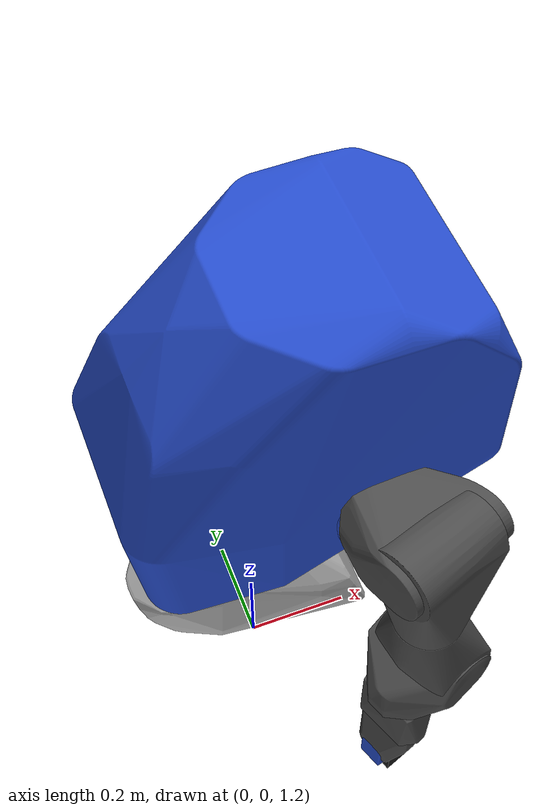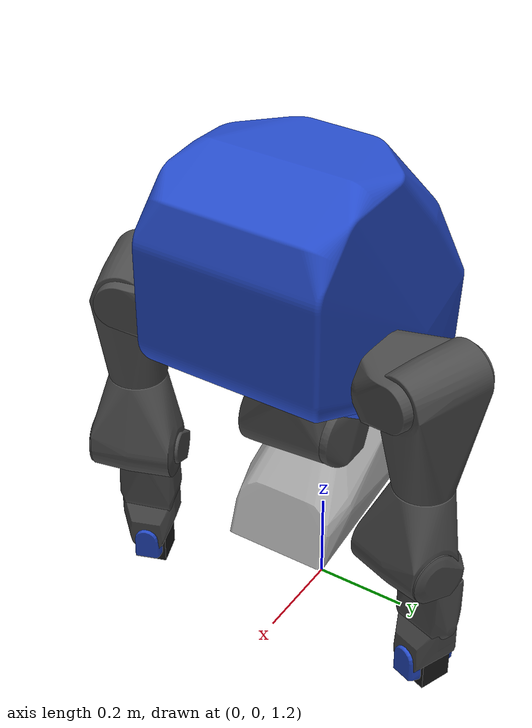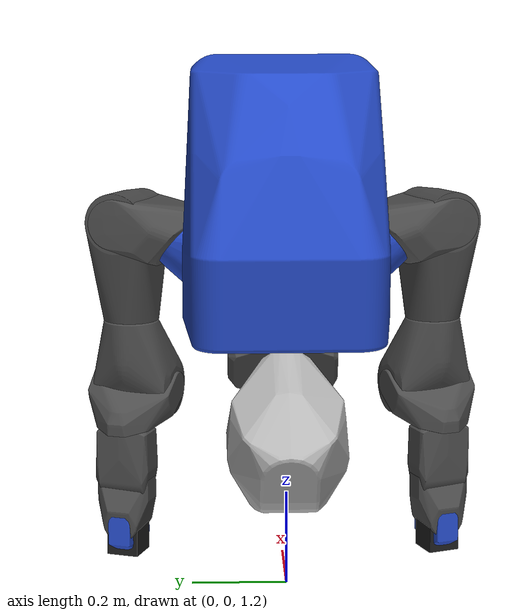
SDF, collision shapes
<sdf version='1.6'>
  <model name='bigman'>
    <link name='base_link'>
      <pose frame=''>0 0 0 0 -0 0</pose>
      <inertial>
        <pose frame=''>-0.022813 -0.000739 0.030423 0 -0 0</pose>
        <mass>11.0461</mass>
        <inertia>
          <ixx>0.096208</ixx>
          <ixy>0.00014081</ixy>
          <ixz>0.00312581</ixz>
          <iyy>0.0985112</iyy>
          <iyz>0.000139381</iyz>
          <izz>0.0865415</izz>
        </inertia>
      </inertial>
      <collision name='base_link_fixed_joint_lump__Waist_collision'>
        <pose frame=''>0 0 0 0 -0 0</pose>
        <geometry>
          <mesh>
            <scale>0.001 0.001 0.001</scale>
            <uri>model://bigman_urdf/meshes/simple/Waist.STL</uri>
          </mesh>
        </geometry>
      </collision>
      <visual name='base_link_fixed_joint_lump__Waist_visual'>
        <pose frame=''>0 0 0 0 -0 0</pose>
        <geometry>
          <mesh>
            <scale>0.001 0.001 0.001</scale>
            <uri>model://bigman_urdf/meshes/Waist.STL</uri>
          </mesh>
        </geometry>
      </visual>
      <gravity>1</gravity>
      <velocity_decay/>
    </link>
    <joint name='fixed' type='revolute'>
      <child>base_link</child>
      <parent>world</parent>
      <axis>
        <limit>
          <lower>0</lower>
          <upper>0</upper>
        </limit>
        <dynamics>
          <damping>0</damping>
          <friction>0</friction>
          <spring_reference>0</spring_reference>
          <spring_stiffness>0</spring_stiffness>
        </dynamics>
        <use_parent_model_frame>1</use_parent_model_frame>
        <xyz>0 0 1</xyz>
      </axis>
    </joint>
    <link name='DWL'>
      <pose frame=''>0.1115 0 0.195982 0 -0 0</pose>
      <inertial>
        <pose frame=''>-0.046109 0.022322 -0.022495 0 -0 0</pose>
        <mass>1.44965</mass>
        <inertia>
          <ixx>0.0109676</ixx>
          <ixy>0.00111556</ixy>
          <ixz>0.0003003</ixz>
          <iyy>0.00409572</iyy>
          <iyz>0.00054456</iyz>
          <izz>0.011438</izz>
        </inertia>
      </inertial>
      <collision name='DWL_collision'>
        <pose frame=''>0 0 0 0 -0 0</pose>
        <geometry>
          <mesh>
            <scale>0.001 0.001 0.001</scale>
            <uri>model://bigman_urdf/meshes/simple/TorsoRoll.STL</uri>
          </mesh>
        </geometry>
        <surface>
          <contact>
            <ode/>
          </contact>
          <friction>
            <ode/>
          </friction>
        </surface>
      </collision>
      <visual name='DWL_visual'>
        <pose frame=''>0 0 0 0 -0 0</pose>
        <geometry>
          <mesh>
            <scale>0.001 0.001 0.001</scale>
            <uri>model://bigman_urdf/meshes/TorsoRoll.STL</uri>
          </mesh>
        </geometry>
        <material>
          <script>
            <name>Gazebo/DarkGrey</name>
            <uri>file://media/materials/scripts/gazebo.material</uri>
          </script>
        </material>
      </visual>
      <gravity>1</gravity>
      <velocity_decay/>
    </link>
    <joint name='WaistLat' type='revolute'>
      <child>DWL</child>
      <parent>base_link</parent>
      <axis>
        <xyz>0.8988 0 0.438359</xyz>
        <limit>
          <lower>-0.610865</lower>
          <upper>0.610865</upper>
          <effort>120</effort>
          <velocity>6.283</velocity>
        </limit>
        <dynamics>
          <damping>3</damping>
          <friction>0</friction>
          <spring_reference>0</spring_reference>
          <spring_stiffness>0</spring_stiffness>
        </dynamics>
        <use_parent_model_frame>1</use_parent_model_frame>
      </axis>
      <physics>
        <provide_feedback>1</provide_feedback>
        <ode>
          <provide_feedback>1</provide_feedback>
          <implicit_spring_damper>1</implicit_spring_damper>
          <cfm_damping>1</cfm_damping>
          <limit>
            <cfm>0</cfm>
            <erp>0.2</erp>
          </limit>
        </ode>
      </physics>
    </joint>
    <link name='DWS'>
      <pose frame=''>0.1115 0 0.195982 0 -0 0</pose>
      <inertial>
        <pose frame=''>0.000102 0.009282 0.081136 0 -0 0</pose>
        <mass>5.28826</mass>
        <inertia>
          <ixx>0.0162807</ixx>
          <ixy>-3.23e-06</ixy>
          <ixz>1.424e-05</ixz>
          <iyy>0.0142429</iyy>
          <iyz>0.00075458</iyz>
          <izz>0.00994169</izz>
        </inertia>
      </inertial>
      <collision name='DWS_collision'>
        <pose frame=''>0 0 0 0 -0 0</pose>
        <geometry>
          <mesh>
            <scale>0.001 0.001 0.001</scale>
            <uri>model://bigman_urdf/meshes/simple/TorsoYawPitch.STL</uri>
          </mesh>
        </geometry>
        <surface>
          <contact>
            <ode/>
          </contact>
          <friction>
            <ode/>
          </friction>
        </surface>
      </collision>
      <visual name='DWS_visual'>
        <pose frame=''>0 0 0 0 -0 0</pose>
        <geometry>
          <mesh>
            <scale>0.001 0.001 0.001</scale>
            <uri>model://bigman_urdf/meshes/TorsoYawPitch.STL</uri>
          </mesh>
        </geometry>
        <material>
          <script>
            <name>Gazebo/DarkGrey</name>
            <uri>file://media/materials/scripts/gazebo.material</uri>
          </script>
        </material>
      </visual>
      <gravity>1</gravity>
      <velocity_decay/>
    </link>
    <joint name='WaistSag' type='revolute'>
      <child>DWS</child>
      <parent>DWL</parent>
      <axis>
        <xyz>0 1 0</xyz>
        <limit>
          <lower>-0.349066</lower>
          <upper>1.39626</upper>
          <effort>220</effort>
          <velocity>6.283</velocity>
        </limit>
        <dynamics>
          <damping>3</damping>
          <friction>0</friction>
          <spring_reference>0</spring_reference>
          <spring_stiffness>0</spring_stiffness>
        </dynamics>
        <use_parent_model_frame>1</use_parent_model_frame>
      </axis>
      <physics>
        <provide_feedback>1</provide_feedback>
        <ode>
          <provide_feedback>1</provide_feedback>
          <implicit_spring_damper>1</implicit_spring_damper>
          <cfm_damping>1</cfm_damping>
          <limit>
            <cfm>0</cfm>
            <erp>0.2</erp>
          </limit>
        </ode>
      </physics>
    </joint>
    <link name='DWYTorso'>
      <pose frame=''>0.1115 0 0.418732 0 -0 0</pose>
      <inertial>
        <pose frame=''>-0.055035 0 0.178241 0 -0 0</pose>
        <mass>40.7</mass>
        <inertia>
          <ixx>1.57781</ixx>
          <ixy>8.16929e-05</ixy>
          <ixz>-0.565821</ixz>
          <iyy>1.62242</iyy>
          <iyz>-1.75581e-05</iyz>
          <izz>0.690258</izz>
        </inertia>
      </inertial>
      <collision name='DWYTorso_collision'>
        <pose frame=''>0 0 0 0 -0 0</pose>
        <geometry>
          <mesh>
            <scale>0.001 0.001 0.001</scale>
            <uri>model://bigman_urdf/meshes/simple/NewChest.STL</uri>
          </mesh>
        </geometry>
        <surface>
          <contact>
            <ode/>
          </contact>
          <friction>
            <ode/>
          </friction>
        </surface>
      </collision>
      <collision name='DWYTorso_fixed_joint_lump__backpack_collision_1'>
        <pose frame=''>-0.185 0 -0.025 0 -0 0</pose>
        <geometry>
          <box>
            <size>0.16 0.3 0.22</size>
          </box>
        </geometry>
      </collision>
      <collision name='DWYTorso_fixed_joint_lump__TorsoProtections_collision_2'>
        <pose frame=''>0 0 0 0 -0 0</pose>
        <geometry>
          <mesh>
            <scale>0.001 0.001 0.001</scale>
            <uri>model://bigman_urdf/meshes/simple/ProtectionSystem.STL</uri>
          </mesh>
        </geometry>
      </collision>
      <visual name='DWYTorso_visual'>
        <pose frame=''>0 0 0 0 -0 0</pose>
        <geometry>
          <mesh>
            <scale>0.001 0.001 0.001</scale>
            <uri>model://bigman_urdf/meshes/NewChest.STL</uri>
          </mesh>
        </geometry>
        <material>
          <script>
            <name>Gazebo/Blue</name>
            <uri>file://media/materials/scripts/gazebo.material</uri>
          </script>
        </material>
      </visual>
      <visual name='DWYTorso_fixed_joint_lump__backpack_visual_1'>
        <pose frame=''>-0.185 0 -0.025 0 -0 0</pose>
        <geometry>
          <box>
            <size>0.16 0.3 0.22</size>
          </box>
        </geometry>
      </visual>
      <visual name='DWYTorso_fixed_joint_lump__TorsoProtections_visual_2'>
        <pose frame=''>0 0 0 0 -0 0</pose>
        <geometry>
          <mesh>
            <scale>0.001 0.001 0.001</scale>
            <uri>model://bigman_urdf/meshes/ProtectionSystem.STL</uri>
          </mesh>
        </geometry>
      </visual>
      <gravity>1</gravity>
      <velocity_decay/>
    </link>
    <joint name='WaistYaw' type='revolute'>
      <child>DWYTorso</child>
      <parent>DWS</parent>
      <axis>
        <xyz>0 0 1</xyz>
        <limit>
          <lower>-2.84489</lower>
          <upper>2.84489</upper>
          <effort>120</effort>
          <velocity>6.283</velocity>
        </limit>
        <dynamics>
          <damping>3</damping>
          <friction>0</friction>
          <spring_reference>0</spring_reference>
          <spring_stiffness>0</spring_stiffness>
        </dynamics>
        <use_parent_model_frame>1</use_parent_model_frame>
      </axis>
      <physics>
        <provide_feedback>1</provide_feedback>
        <ode>
          <provide_feedback>1</provide_feedback>
          <implicit_spring_damper>1</implicit_spring_damper>
          <cfm_damping>1</cfm_damping>
          <limit>
            <cfm>0</cfm>
            <erp>0.2</erp>
          </limit>
        </ode>
      </physics>
    </joint>
    <link name='LShp'>
      <pose frame=''>0.157146 0.219164 0.420263 0 0 -0.3491</pose>
      <inertial>
        <pose frame=''>-0.005433 0.0448 0.015811 0 -0 0</pose>
        <mass>1.81746</mass>
        <inertia>
          <ixx>0.00571053</ixx>
          <ixy>-0.00041083</ixy>
          <ixz>-5.13e-05</ixz>
          <iyy>0.0112691</iyy>
          <iyz>3.461e-05</iyz>
          <izz>0.013712</izz>
        </inertia>
      </inertial>
      <collision name='LShp_collision'>
        <pose frame=''>0 0 0 0 -0 0</pose>
        <geometry>
          <mesh>
            <scale>0.001 -0.001 0.001</scale>
            <uri>model://bigman_urdf/meshes/simple/ShoulderPitch.STL</uri>
          </mesh>
        </geometry>
        <surface>
          <contact>
            <ode/>
          </contact>
          <friction>
            <ode/>
          </friction>
        </surface>
      </collision>
      <visual name='LShp_visual'>
        <pose frame=''>0 0 0 0 -0 0</pose>
        <geometry>
          <mesh>
            <scale>0.001 -0.001 0.001</scale>
            <uri>model://bigman_urdf/meshes/ShoulderPitch.STL</uri>
          </mesh>
        </geometry>
        <material>
          <script>
            <name>Gazebo/DarkGrey</name>
            <uri>file://media/materials/scripts/gazebo.material</uri>
          </script>
        </material>
      </visual>
      <gravity>1</gravity>
      <velocity_decay/>
    </link>
    <joint name='LShSag' type='revolute'>
      <child>LShp</child>
      <parent>DWYTorso</parent>
      <axis>
        <xyz>0.254194 0.698319 0.669131</xyz>
        <limit>
          <lower>-2.87979</lower>
          <upper>2.79253</upper>
          <effort>120</effort>
          <velocity>6.283</velocity>
        </limit>
        <dynamics>
          <damping>3</damping>
          <friction>0</friction>
          <spring_reference>0</spring_reference>
          <spring_stiffness>0</spring_stiffness>
        </dynamics>
        <use_parent_model_frame>1</use_parent_model_frame>
      </axis>
      <physics>
        <provide_feedback>1</provide_feedback>
        <ode>
          <provide_feedback>1</provide_feedback>
          <implicit_spring_damper>1</implicit_spring_damper>
          <cfm_damping>1</cfm_damping>
          <limit>
            <cfm>0</cfm>
            <erp>0.2</erp>
          </limit>
        </ode>
      </physics>
    </joint>
    <link name='LShr'>
      <pose frame=''>0.197018 0.328701 0.453903 0 0 -0.3491</pose>
      <inertial>
        <pose frame=''>0.007293 -2.7e-05 -0.075297 0 -0 0</pose>
        <mass>5.00486</mass>
        <inertia>
          <ixx>0.0164434</ixx>
          <ixy>1.187e-05</ixy>
          <ixz>-0.00010546</ixz>
          <iyy>0.018048</iyy>
          <iyz>5.65e-06</iyz>
          <izz>0.0080242</izz>
        </inertia>
      </inertial>
      <collision name='LShr_collision'>
        <pose frame=''>0 0 0 0 -0 0</pose>
        <geometry>
          <mesh>
            <scale>0.001 -0.001 0.001</scale>
            <uri>model://bigman_urdf/meshes/simple/TopUpperArm.STL</uri>
          </mesh>
        </geometry>
        <surface>
          <contact>
            <ode/>
          </contact>
          <friction>
            <ode/>
          </friction>
        </surface>
      </collision>
      <visual name='LShr_visual'>
        <pose frame=''>0 0 0 0 -0 0</pose>
        <geometry>
          <mesh>
            <scale>0.001 -0.001 0.001</scale>
            <uri>model://bigman_urdf/meshes/TopUpperArm.STL</uri>
          </mesh>
        </geometry>
        <material>
          <script>
            <name>Gazebo/DarkGrey</name>
            <uri>file://media/materials/scripts/gazebo.material</uri>
          </script>
        </material>
      </visual>
      <gravity>1</gravity>
      <velocity_decay/>
    </link>
    <joint name='LShLat' type='revolute'>
      <child>LShr</child>
      <parent>LShp</parent>
      <axis>
        <xyz>0.939681 -0.342052 0</xyz>
        <limit>
          <lower>0.0872665</lower>
          <upper>3.85718</upper>
          <effort>120</effort>
          <velocity>6.283</velocity>
        </limit>
        <dynamics>
          <damping>3</damping>
          <friction>0</friction>
          <spring_reference>0</spring_reference>
          <spring_stiffness>0</spring_stiffness>
        </dynamics>
        <use_parent_model_frame>1</use_parent_model_frame>
      </axis>
      <physics>
        <provide_feedback>1</provide_feedback>
        <ode>
          <provide_feedback>1</provide_feedback>
          <implicit_spring_damper>1</implicit_spring_damper>
          <cfm_damping>1</cfm_damping>
          <limit>
            <cfm>0</cfm>
            <erp>0.2</erp>
          </limit>
        </ode>
      </physics>
    </joint>
    <link name='LShy'>
      <pose frame=''>0.197018 0.328701 0.231903 0 0 -0.3491</pose>
      <inertial>
        <pose frame=''>0.027654 0.032586 -0.126988 0 -0 0</pose>
        <mass>3.20289</mass>
        <inertia>
          <ixx>0.0112905</ixx>
          <ixy>-0.00013518</ixy>
          <ixz>-0.0013476</ixz>
          <iyy>0.00984951</iyy>
          <iyz>0.00026836</iyz>
          <izz>0.00728549</izz>
        </inertia>
      </inertial>
      <collision name='LShy_collision'>
        <pose frame=''>0 0 0 0 -0 0</pose>
        <geometry>
          <mesh>
            <scale>0.001 -0.001 0.001</scale>
            <uri>model://bigman_urdf/meshes/simple/BottomUpperArm.STL</uri>
          </mesh>
        </geometry>
        <surface>
          <contact>
            <ode/>
          </contact>
          <friction>
            <ode/>
          </friction>
        </surface>
      </collision>
      <visual name='LShy_visual'>
        <pose frame=''>0 0 0 0 -0 0</pose>
        <geometry>
          <mesh>
            <scale>0.001 -0.001 0.001</scale>
            <uri>model://bigman_urdf/meshes/BottomUpperArm.STL</uri>
          </mesh>
        </geometry>
        <material>
          <script>
            <name>Gazebo/DarkGrey</name>
            <uri>file://media/materials/scripts/gazebo.material</uri>
          </script>
        </material>
      </visual>
      <gravity>1</gravity>
      <velocity_decay/>
    </link>
    <joint name='LShYaw' type='revolute'>
      <child>LShy</child>
      <parent>LShr</parent>
      <axis>
        <xyz>0 0 1</xyz>
        <limit>
          <lower>-2.84489</lower>
          <upper>2.84489</upper>
          <effort>120</effort>
          <velocity>6.283</velocity>
        </limit>
        <dynamics>
          <damping>3</damping>
          <friction>0</friction>
          <spring_reference>0</spring_reference>
          <spring_stiffness>0</spring_stiffness>
        </dynamics>
        <use_parent_model_frame>1</use_parent_model_frame>
      </axis>
      <physics>
        <provide_feedback>1</provide_feedback>
        <ode>
          <provide_feedback>1</provide_feedback>
          <implicit_spring_damper>1</implicit_spring_damper>
          <cfm_damping>1</cfm_damping>
          <limit>
            <cfm>0</cfm>
            <erp>0.2</erp>
          </limit>
        </ode>
      </physics>
    </joint>
    <link name='LElb'>
      <pose frame=''>0.230847 0.316387 0.081903 0 0 -0.3491</pose>
      <inertial>
        <pose frame=''>-0.055755 0.007583 -0.04382 0 -0 0</pose>
        <mass>0.867654</mass>
        <inertia>
          <ixx>0.00403952</ixx>
          <ixy>-0.000349731</ixy>
          <ixz>-0.000684005</ixz>
          <iyy>0.00224606</iyy>
          <iyz>-0.000288444</iyz>
          <izz>0.0044895</izz>
        </inertia>
      </inertial>
      <collision name='LElb_collision'>
        <pose frame=''>0 0 0 0 -0 0</pose>
        <geometry>
          <mesh>
            <scale>0.001 -0.001 0.001</scale>
            <uri>model://bigman_urdf/meshes/simple/Elbow.STL</uri>
          </mesh>
        </geometry>
        <surface>
          <contact>
            <ode/>
          </contact>
          <friction>
            <ode/>
          </friction>
        </surface>
      </collision>
      <visual name='LElb_visual'>
        <pose frame=''>0 0 0 0 -0 0</pose>
        <geometry>
          <mesh>
            <scale>0.001 -0.001 0.001</scale>
            <uri>model://bigman_urdf/meshes/Elbow.STL</uri>
          </mesh>
        </geometry>
        <material>
          <script>
            <name>Gazebo/DarkGrey</name>
            <uri>file://media/materials/scripts/gazebo.material</uri>
          </script>
        </material>
      </visual>
      <gravity>1</gravity>
      <velocity_decay/>
    </link>
    <joint name='LElbj' type='revolute'>
      <child>LElb</child>
      <parent>LShy</parent>
      <axis>
        <xyz>0.342052 0.939681 0</xyz>
        <limit>
          <lower>-2.96706</lower>
          <upper>0.593412</upper>
          <effort>120</effort>
          <velocity>6.283</velocity>
        </limit>
        <dynamics>
          <damping>3</damping>
          <friction>0</friction>
          <spring_reference>0</spring_reference>
          <spring_stiffness>0</spring_stiffness>
        </dynamics>
        <use_parent_model_frame>1</use_parent_model_frame>
      </axis>
      <physics>
        <provide_feedback>1</provide_feedback>
        <ode>
          <provide_feedback>1</provide_feedback>
          <implicit_spring_damper>1</implicit_spring_damper>
          <cfm_damping>1</cfm_damping>
          <limit>
            <cfm>0</cfm>
            <erp>0.2</erp>
          </limit>
        </ode>
      </physics>
    </joint>
    <link name='LForearm'>
      <pose frame=''>0.160371 0.342041 -0.113597 0 0 -0.3491</pose>
      <inertial>
        <pose frame=''>1.3e-05 0.004298 0.044718 0 -0 0</pose>
        <mass>2.21277</mass>
        <inertia>
          <ixx>0.00654284</ixx>
          <ixy>-4.1197e-05</ixy>
          <ixz>3.27273e-06</ixz>
          <iyy>0.00558783</iyy>
          <iyz>0.000420887</iyz>
          <izz>0.0024783</izz>
        </inertia>
      </inertial>
      <collision name='LForearm_collision'>
        <pose frame=''>0 0 0 0 -0 0</pose>
        <geometry>
          <mesh>
            <scale>0.001 -0.001 0.001</scale>
            <uri>model://bigman_urdf/meshes/simple/Forearm.STL</uri>
          </mesh>
        </geometry>
        <surface>
          <contact>
            <ode/>
          </contact>
          <friction>
            <ode/>
          </friction>
        </surface>
      </collision>
      <visual name='LForearm_visual'>
        <pose frame=''>0 0 0 0 -0 0</pose>
        <geometry>
          <mesh>
            <scale>0.001 -0.001 0.001</scale>
            <uri>model://bigman_urdf/meshes/Forearm.STL</uri>
          </mesh>
        </geometry>
        <material>
          <script>
            <name>Gazebo/DarkGrey</name>
            <uri>file://media/materials/scripts/gazebo.material</uri>
          </script>
        </material>
      </visual>
      <gravity>1</gravity>
      <velocity_decay/>
    </link>
    <joint name='LForearmPlate' type='revolute'>
      <child>LForearm</child>
      <parent>LElb</parent>
      <axis>
        <xyz>0 0 1</xyz>
        <limit>
          <lower>-2.529</lower>
          <upper>2.529</upper>
          <effort>60</effort>
          <velocity>6.283</velocity>
        </limit>
        <dynamics>
          <damping>0.03</damping>
          <friction>0</friction>
          <spring_reference>0</spring_reference>
          <spring_stiffness>0</spring_stiffness>
        </dynamics>
        <use_parent_model_frame>1</use_parent_model_frame>
      </axis>
      <physics>
        <provide_feedback>1</provide_feedback>
        <ode>
          <provide_feedback>1</provide_feedback>
          <implicit_spring_damper>1</implicit_spring_damper>
          <cfm_damping>1</cfm_damping>
          <limit>
            <cfm>0</cfm>
            <erp>0.2</erp>
          </limit>
        </ode>
      </physics>
    </joint>
    <link name='LWrMot2'>
      <pose frame=''>0.160371 0.342041 -0.113597 0 0 -0.3491</pose>
      <inertial>
        <pose frame=''>0.009819 0.00138 -0.08038 0 -0 0</pose>
        <mass>1.28381</mass>
        <inertia>
          <ixx>0.00199412</ixx>
          <ixy>2.56971e-05</ixy>
          <ixz>0.000174435</ixz>
          <iyy>0.00217553</iyy>
          <iyz>-0.00012101</iyz>
          <izz>0.00183038</izz>
        </inertia>
      </inertial>
      <collision name='LWrMot2_collision'>
        <pose frame=''>0 0 0 0 -0 0</pose>
        <geometry>
          <mesh>
            <scale>0.001 -0.001 0.001</scale>
            <uri>model://bigman_urdf/meshes/simple/ForearmPitch.STL</uri>
          </mesh>
        </geometry>
        <surface>
          <contact>
            <ode/>
          </contact>
          <friction>
            <ode/>
          </friction>
        </surface>
      </collision>
      <visual name='LWrMot2_visual'>
        <pose frame=''>0 0 0 0 -0 0</pose>
        <geometry>
          <mesh>
            <scale>0.001 -0.001 0.001</scale>
            <uri>model://bigman_urdf/meshes/ForearmPitch.STL</uri>
          </mesh>
        </geometry>
        <material>
          <script>
            <name>Gazebo/DarkGrey</name>
            <uri>file://media/materials/scripts/gazebo.material</uri>
          </script>
        </material>
      </visual>
      <gravity>1</gravity>
      <velocity_decay/>
    </link>
    <joint name='LWrj1' type='revolute'>
      <child>LWrMot2</child>
      <parent>LForearm</parent>
      <axis>
        <xyz>0.342052 0.939681 0</xyz>
        <limit>
          <lower>-1.48</lower>
          <upper>1.48</upper>
          <effort>60</effort>
          <velocity>6.283</velocity>
        </limit>
        <dynamics>
          <damping>0.03</damping>
          <friction>0</friction>
          <spring_reference>0</spring_reference>
          <spring_stiffness>0</spring_stiffness>
        </dynamics>
        <use_parent_model_frame>1</use_parent_model_frame>
      </axis>
      <physics>
        <provide_feedback>1</provide_feedback>
        <ode>
          <provide_feedback>1</provide_feedback>
          <implicit_spring_damper>1</implicit_spring_damper>
          <cfm_damping>1</cfm_damping>
          <limit>
            <cfm>0</cfm>
            <erp>0.2</erp>
          </limit>
        </ode>
      </physics>
    </joint>
    <link name='LWrMot3'>
      <pose frame=''>0.160371 0.342041 -0.205597 0 0 -0.3491</pose>
      <inertial>
        <pose frame=''>0.007038 -1.1e-05 -0.039669 0 -0 0</pose>
        <mass>0.428014</mass>
        <inertia>
          <ixx>0.000286202</ixx>
          <ixy>5.25705e-08</ixy>
          <ixz>-3.91742e-05</ixz>
          <iyy>0.000712619</iyy>
          <iyz>-9.50203e-08</iyz>
          <izz>0.000614443</izz>
        </inertia>
      </inertial>
      <collision name='LWrMot3_collision'>
        <pose frame=''>0 0 0 0 -0 0</pose>
        <geometry>
          <mesh>
            <scale>0.001 -0.001 0.001</scale>
            <uri>model://bigman_urdf/meshes/simple/ForearmRoll.STL</uri>
          </mesh>
        </geometry>
        <surface>
          <contact>
            <ode/>
          </contact>
          <friction>
            <ode/>
          </friction>
        </surface>
      </collision>
      <visual name='LWrMot3_visual'>
        <pose frame=''>0 0 0 0 -0 0</pose>
        <geometry>
          <mesh>
            <scale>0.001 -0.001 0.001</scale>
            <uri>model://bigman_urdf/meshes/ForearmRoll.STL</uri>
          </mesh>
        </geometry>
        <material>
          <script>
            <name>Gazebo/Blue</name>
            <uri>file://media/materials/scripts/gazebo.material</uri>
          </script>
        </material>
      </visual>
      <velocity_decay/>
      <sensor name='LWrMot3_contact_sensor' type='contact'>
        <contact>
          <collision>LWrMot3_fixed_joint_lump__LSoftHandLink_collision_1</collision>
          <topic>__default_topic__</topic>
        </contact>
      </sensor>
      <gravity>1</gravity>
      <velocity_decay/>
    </link>
    <joint name='LWrj2' type='revolute'>
      <child>LWrMot3</child>
      <parent>LWrMot2</parent>
      <axis>
        <xyz>0.939681 -0.342052 0</xyz>
        <limit>
          <lower>-1.48</lower>
          <upper>1.48</upper>
          <effort>60</effort>
          <velocity>6.283</velocity>
        </limit>
        <dynamics>
          <damping>0.03</damping>
          <friction>0</friction>
          <spring_reference>0</spring_reference>
          <spring_stiffness>0</spring_stiffness>
        </dynamics>
        <use_parent_model_frame>1</use_parent_model_frame>
      </axis>
      <physics>
        <ode>
          <limit>
            <cfm>0</cfm>
            <erp>0.2</erp>
          </limit>
          <provide_feedback>1</provide_feedback>
          <implicit_spring_damper>1</implicit_spring_damper>
          <cfm_damping>1</cfm_damping>
        </ode>
        <provide_feedback>1</provide_feedback>
      </physics>
      <sensor name='l_arm_ft' type='force_torque'>
        <force_torque>
          <frame>sensor</frame>
          <measure_direction>child_to_parent</measure_direction>
        </force_torque>
        <always_on>1</always_on>
        <visualize>1</visualize>
        <update_rate>1000</update_rate>
        <pose frame=''>0 0 -0.0565 0 -0 0</pose>
      </sensor>
    </joint>
    <link name='LSoftHand'>
      <pose frame=''>0.160371 0.342041 -0.245597 0 0 -0.3491</pose>
      <inertial>
        <pose frame=''>0 0 -0.17 0 -0 0</pose>
        <mass>1.2</mass>
        <inertia>
          <ixx>0.00232</ixx>
          <ixy>0</ixy>
          <ixz>0</ixz>
          <iyy>0.00296</iyy>
          <iyz>0</iyz>
          <izz>0.00136</izz>
        </inertia>
      </inertial>
      <collision name='LSoftHand_collision'>
        <pose frame=''>0 0 0 0 -0 0</pose>
        <geometry>
          <box>
            <size>0.07 0.07 0.07</size>
          </box>
        </geometry>
        <surface>
          <contact>
            <ode>
              <kp>1e+06</kp>
              <kd>100</kd>
              <max_vel>1</max_vel>
              <min_depth>0</min_depth>
            </ode>
          </contact>
          <friction>
            <ode>
              <mu>1</mu>
              <mu2>1</mu2>
              <fdir1>1 0 0</fdir1>
            </ode>
          </friction>
        </surface>
      </collision>
      <visual name='LSoftHand_visual'>
        <pose frame=''>0 0 0 0 -0 0</pose>
        <geometry>
          <box>
            <size>0.07 0.07 0.07</size>
          </box>
        </geometry>
        <material>
          <script>
            <name>Gazebo/Black</name>
            <uri>file://media/materials/scripts/gazebo.material</uri>
          </script>
        </material>
      </visual>
      <velocity_decay/>
      <gravity>1</gravity>
      <velocity_decay/>
    </link>
    <joint name='l_handj' type='revolute'>
      <child>LSoftHand</child>
      <parent>LWrMot3</parent>
      <axis>
        <xyz>-0.939681 0.342052 0</xyz>
        <limit>
          <lower>0</lower>
          <upper>5</upper>
          <effort>5</effort>
          <velocity>4</velocity>
        </limit>
        <dynamics>
          <damping>3</damping>
          <friction>0</friction>
          <spring_reference>0</spring_reference>
          <spring_stiffness>0</spring_stiffness>
        </dynamics>
        <use_parent_model_frame>1</use_parent_model_frame>
      </axis>
      <physics>
        <provide_feedback>1</provide_feedback>
        <ode>
          <provide_feedback>1</provide_feedback>
          <implicit_spring_damper>1</implicit_spring_damper>
          <cfm_damping>1</cfm_damping>
          <limit>
            <cfm>0</cfm>
            <erp>0.2</erp>
          </limit>
        </ode>
      </physics>
    </joint>
    <link name='NeckYaw'>
      <pose frame=''>0.1115 0 0.418732 0 -0 0</pose>
      <inertial>
        <pose frame=''>0 0 0.1155 0 -0 0</pose>
        <mass>0.35</mass>
        <inertia>
          <ixx>0.000328401</ixx>
          <ixy>0</ixy>
          <ixz>0</ixz>
          <iyy>7.03717e-05</iyy>
          <iyz>0</iyz>
          <izz>0.000328401</izz>
        </inertia>
      </inertial>
      <collision name='NeckYaw_collision'>
        <pose frame=''>0 0 0 0 -0 0</pose>
        <geometry>
          <mesh>
            <scale>0.001 0.001 0.001</scale>
            <uri>model://bigman_urdf/meshes/simple/NeckYaw.STL</uri>
          </mesh>
        </geometry>
        <surface>
          <contact>
            <ode/>
          </contact>
          <friction>
            <ode/>
          </friction>
        </surface>
      </collision>
      <visual name='NeckYaw_visual'>
        <pose frame=''>0 0 0 0 -0 0</pose>
        <geometry>
          <mesh>
            <scale>0.001 0.001 0.001</scale>
            <uri>model://bigman_urdf/meshes/NeckYaw.STL</uri>
          </mesh>
        </geometry>
        <material>
          <script>
            <name>Gazebo/Grey</name>
            <uri>file://media/materials/scripts/gazebo.material</uri>
          </script>
        </material>
      </visual>
      <gravity>1</gravity>
      <velocity_decay/>
    </link>
    <joint name='NeckYawj' type='revolute'>
      <child>NeckYaw</child>
      <parent>DWYTorso</parent>
      <axis>
        <xyz>0 0 1</xyz>
        <limit>
          <lower>-0.610865</lower>
          <upper>0.610865</upper>
          <effort>120</effort>
          <velocity>6.283</velocity>
        </limit>
        <dynamics>
          <damping>3</damping>
          <friction>0</friction>
          <spring_reference>0</spring_reference>
          <spring_stiffness>0</spring_stiffness>
        </dynamics>
        <use_parent_model_frame>1</use_parent_model_frame>
      </axis>
    </joint>
    <link name='NeckPitch'>
      <pose frame=''>0.1115 0 0.535732 0 -0 0</pose>
      <inertial>
        <pose frame=''>-0.022658 2.4e-05 0.145328 0 -0 0</pose>
        <mass>2.04285</mass>
        <inertia>
          <ixx>0.0180071</ixx>
          <ixy>-3.1877e-06</ixy>
          <ixz>0.00767138</ixz>
          <iyy>0.023307</iyy>
          <iyz>1.85732e-06</iyz>
          <izz>0.00971513</izz>
        </inertia>
      </inertial>
      <collision name='NeckPitch_collision'>
        <pose frame=''>0 0 0 0 -0 0</pose>
        <geometry>
          <mesh>
            <scale>0.001 0.001 0.001</scale>
            <uri>model://bigman_urdf/meshes/simple/NeckPitch.STL</uri>
          </mesh>
        </geometry>
        <surface>
          <contact>
            <ode/>
          </contact>
          <friction>
            <ode/>
          </friction>
        </surface>
      </collision>
      <collision name='NeckPitch_fixed_joint_lump__multisense/head_collision_1'>
        <pose frame=''>0.08765 0 0.06475 0 -0 0</pose>
        <geometry>
          <mesh>
            <scale>0.001 0.001 0.001</scale>
            <uri>model://bigman_urdf/meshes/simple/Head.STL</uri>
          </mesh>
        </geometry>
        <surface>
          <contact>
            <ode/>
          </contact>
          <friction>
            <ode>
              <mu>0.9</mu>
              <mu2>0.9</mu2>
            </ode>
          </friction>
        </surface>
      </collision>
      <visual name='NeckPitch_visual'>
        <pose frame=''>0 0 0 0 -0 0</pose>
        <geometry>
          <mesh>
            <scale>0.001 0.001 0.001</scale>
            <uri>model://bigman_urdf/meshes/NeckPitch.STL</uri>
          </mesh>
        </geometry>
        <material>
          <script>
            <name>Gazebo/Grey</name>
            <uri>file://media/materials/scripts/gazebo.material</uri>
          </script>
        </material>
      </visual>
      <visual name='NeckPitch_fixed_joint_lump__multisense/head_visual_1'>
        <pose frame=''>0.08765 0 0.06475 0 -0 0</pose>
        <geometry>
          <mesh>
            <scale>0.001 0.001 0.001</scale>
            <uri>model://bigman_urdf/meshes/Head.STL</uri>
          </mesh>
        </geometry>
        <material>
          <script>
            <uri>__default__</uri>
            <name>__default__</name>
          </script>
        </material>
      </visual>
      <visual name='NeckPitch_fixed_joint_lump__multisense/head_imu_link_visual_2'>
        <pose frame=''>0.04015 0.035 0.06475 0 -0 0</pose>
        <geometry>
          <box>
            <size>0.01 0.01 0.01</size>
          </box>
        </geometry>
        <material>
          <script>
            <uri>__default__</uri>
            <name>__default__</name>
          </script>
        </material>
      </visual>
      <velocity_decay/>
      <velocity_decay/>
      <velocity_decay/>
      <sensor name='head_imu_sensor' type='imu'>
        <always_on>1</always_on>
        <update_rate>1000</update_rate>
        <imu>
          <angular_velocity>
            <x>
              <noise type='gaussian'>
                <mean>0</mean>
                <stddev>0.0002</stddev>
                <bias_mean>7.5e-06</bias_mean>
                <bias_stddev>8e-07</bias_stddev>
              </noise>
            </x>
            <y>
              <noise type='gaussian'>
                <mean>0</mean>
                <stddev>0.0002</stddev>
                <bias_mean>7.5e-06</bias_mean>
                <bias_stddev>8e-07</bias_stddev>
              </noise>
            </y>
            <z>
              <noise type='gaussian'>
                <mean>0</mean>
                <stddev>0.0002</stddev>
                <bias_mean>7.5e-06</bias_mean>
                <bias_stddev>8e-07</bias_stddev>
              </noise>
            </z>
          </angular_velocity>
          <linear_acceleration>
            <x>
              <noise type='gaussian'>
                <mean>0</mean>
                <stddev>0.017</stddev>
                <bias_mean>0.1</bias_mean>
                <bias_stddev>0.001</bias_stddev>
              </noise>
            </x>
            <y>
              <noise type='gaussian'>
                <mean>0</mean>
                <stddev>0.017</stddev>
                <bias_mean>0.1</bias_mean>
                <bias_stddev>0.001</bias_stddev>
              </noise>
            </y>
            <z>
              <noise type='gaussian'>
                <mean>0</mean>
                <stddev>0.017</stddev>
                <bias_mean>0.1</bias_mean>
                <bias_stddev>0.001</bias_stddev>
              </noise>
            </z>
          </linear_acceleration>
        </imu>
        <pose frame=''>0.04015 0.035 0.06475 0 -0 0</pose>
      </sensor>
      <gravity>1</gravity>
      <velocity_decay/>
      <sensor name='stereo_camera' type='multicamera'>
        <update_rate>30</update_rate>
        <camera name='left'>
          <horizontal_fov>1.39626</horizontal_fov>
          <image>
            <width>800</width>
            <height>800</height>
            <format>R8G8B8</format>
          </image>
          <clip>
            <near>0.02</near>
            <far>300</far>
          </clip>
          <noise>
            <type>gaussian</type>
            <mean>0</mean>
            <stddev>0.007</stddev>
          </noise>
        </camera>
        <camera name='right'>
          <pose frame=''>0 -0.07 0 0 -0 0</pose>
          <horizontal_fov>1.39626</horizontal_fov>
          <image>
            <width>800</width>
            <height>800</height>
            <format>R8G8B8</format>
          </image>
          <clip>
            <near>0.02</near>
            <far>300</far>
          </clip>
          <noise>
            <type>gaussian</type>
            <mean>0</mean>
            <stddev>0.007</stddev>
          </noise>
        </camera>
        <plugin name='stereo_camera_controller' filename='libgazebo_ros_multicamera.so'>
          <alwaysOn>true</alwaysOn>
          <updateRate>0.0</updateRate>
          <cameraName>multisense/camera</cameraName>
          <imageTopicName>image_raw</imageTopicName>
          <cameraInfoTopicName>camera_info</cameraInfoTopicName>
          <frameName>multisense/left_camera_optical_frame</frameName>
          <rightFrameName>multisense/right_camera_optical_frame</rightFrameName>
          <hackBaseline>0.07</hackBaseline>
          <distortionK1>0.0</distortionK1>
          <distortionK2>0.0</distortionK2>
          <distortionK3>0.0</distortionK3>
          <distortionT1>0.0</distortionT1>
          <distortionT2>0.0</distortionT2>
        </plugin>
        <pose frame=''>0.08765 0.035 0.06275 0 -0 0</pose>
      </sensor>
    </link>
    <joint name='NeckPitchj' type='revolute'>
      <child>NeckPitch</child>
      <parent>NeckYaw</parent>
      <axis>
        <xyz>0 1 0</xyz>
        <limit>
          <lower>-0.261799</lower>
          <upper>1.0472</upper>
          <effort>120</effort>
          <velocity>6.283</velocity>
        </limit>
        <dynamics>
          <damping>3</damping>
          <friction>0</friction>
          <spring_reference>0</spring_reference>
          <spring_stiffness>0</spring_stiffness>
        </dynamics>
        <use_parent_model_frame>1</use_parent_model_frame>
      </axis>
    </joint>
    <link name='multisense/hokuyo_link'>
      <pose frame=''>0.15455 0 0.688482 0 -0 0</pose>
      <inertial>
        <pose frame=''>0.032428 0.000408 -0.004184 0 -0 0</pose>
        <mass>0.057654</mass>
        <inertia>
          <ixx>3.7174e-05</ixx>
          <ixy>4.9927e-08</ixy>
          <ixz>1.1015e-05</ixz>
          <iyy>4.2412e-05</iyy>
          <iyz>-9.8165e-09</iyz>
          <izz>4.167e-05</izz>
        </inertia>
      </inertial>
      <collision name='multisense/hokuyo_link_collision'>
        <pose frame=''>0.01885 0 -0.02119 0 -0 0</pose>
        <geometry>
          <box>
            <size>0.08 0.06 0.04238</size>
          </box>
        </geometry>
        <surface>
          <contact>
            <ode/>
          </contact>
          <friction>
            <ode>
              <mu>0.9</mu>
              <mu2>0.9</mu2>
            </ode>
          </friction>
        </surface>
      </collision>
      <collision name='multisense/hokuyo_link_collision_1'>
        <pose frame=''>0.03 0 0.0235 0 -0 0</pose>
        <geometry>
          <cylinder>
            <length>0.047</length>
            <radius>0.024425</radius>
          </cylinder>
        </geometry>
        <surface>
          <contact>
            <ode/>
          </contact>
          <friction>
            <ode>
              <mu>0.9</mu>
              <mu2>0.9</mu2>
            </ode>
          </friction>
        </surface>
      </collision>
      <visual name='multisense/hokuyo_link_visual'>
        <pose frame=''>0 0 0 1.5708 -0 1.5708</pose>
        <geometry>
          <mesh>
            <scale>1 1 1</scale>
            <uri>model://bigman_urdf/meshes/hokuyo_link.STL</uri>
          </mesh>
        </geometry>
        <material>
          <script>
            <uri>__default__</uri>
            <name>__default__</name>
          </script>
        </material>
      </visual>
      <velocity_decay/>
      <gravity>1</gravity>
      <velocity_decay/>
      <sensor name='head_hokuyo_sensor' type='ray'>
        <visualize>1</visualize>
        <update_rate>40</update_rate>
        <ray>
          <scan>
            <horizontal>
              <samples>720</samples>
              <resolution>1</resolution>
              <min_angle>-1.5708</min_angle>
              <max_angle>1.5708</max_angle>
            </horizontal>
          </scan>
          <range>
            <min>0.1</min>
            <max>30</max>
            <resolution>0.01</resolution>
          </range>
          <noise>
            <type>gaussian</type>
            <mean>0</mean>
            <stddev>0.01</stddev>
          </noise>
        </ray>
        <plugin name='gazebo_ros_head_hokuyo_controller' filename='libgazebo_ros_laser.so'>
          <topicName>/multisense/lidar_scan</topicName>
          <frameName>multisense/head_hokuyo_frame</frameName>
        </plugin>
        <pose frame=''>0.03 0 0.015 0 -0 0</pose>
      </sensor>
    </link>
    <joint name='hokuyo_joint' type='revolute'>
      <child>multisense/hokuyo_link</child>
      <parent>NeckPitch</parent>
      <axis>
        <xyz>1 0 0</xyz>
        <limit>
          <lower>-1e+16</lower>
          <upper>1e+16</upper>
        </limit>
        <dynamics>
          <damping>0.01</damping>
          <friction>0</friction>
          <spring_reference>0</spring_reference>
          <spring_stiffness>0</spring_stiffness>
        </dynamics>
        <use_parent_model_frame>1</use_parent_model_frame>
      </axis>
      <physics>
        <ode>
          <implicit_spring_damper>1</implicit_spring_damper>
          <cfm_damping>1</cfm_damping>
          <limit>
            <cfm>0</cfm>
            <erp>0.2</erp>
          </limit>
        </ode>
      </physics>
    </joint>
    <link name='RShp'>
      <pose frame=''>0.157146 -0.219164 0.420263 0 -0 0.3491</pose>
      <inertial>
        <pose frame=''>-0.005433 -0.0448 0.015811 0 -0 0</pose>
        <mass>1.81746</mass>
        <inertia>
          <ixx>0.00571053</ixx>
          <ixy>0.00041083</ixy>
          <ixz>-5.13e-05</ixz>
          <iyy>0.0112691</iyy>
          <iyz>-3.461e-05</iyz>
          <izz>0.013712</izz>
        </inertia>
      </inertial>
      <collision name='RShp_collision'>
        <pose frame=''>0 0 0 0 -0 0</pose>
        <geometry>
          <mesh>
            <scale>0.001 0.001 0.001</scale>
            <uri>model://bigman_urdf/meshes/simple/ShoulderPitch.STL</uri>
          </mesh>
        </geometry>
        <surface>
          <contact>
            <ode/>
          </contact>
          <friction>
            <ode/>
          </friction>
        </surface>
      </collision>
      <visual name='RShp_visual'>
        <pose frame=''>0 0 0 0 -0 0</pose>
        <geometry>
          <mesh>
            <scale>0.001 0.001 0.001</scale>
            <uri>model://bigman_urdf/meshes/ShoulderPitch.STL</uri>
          </mesh>
        </geometry>
        <material>
          <script>
            <name>Gazebo/DarkGrey</name>
            <uri>file://media/materials/scripts/gazebo.material</uri>
          </script>
        </material>
      </visual>
      <gravity>1</gravity>
      <velocity_decay/>
    </link>
    <joint name='RShSag' type='revolute'>
      <child>RShp</child>
      <parent>DWYTorso</parent>
      <axis>
        <xyz>-0.254194 0.698319 -0.669131</xyz>
        <limit>
          <lower>-2.84489</lower>
          <upper>2.80998</upper>
          <effort>120</effort>
          <velocity>6.283</velocity>
        </limit>
        <dynamics>
          <damping>3</damping>
          <friction>0</friction>
          <spring_reference>0</spring_reference>
          <spring_stiffness>0</spring_stiffness>
        </dynamics>
        <use_parent_model_frame>1</use_parent_model_frame>
      </axis>
      <physics>
        <provide_feedback>1</provide_feedback>
        <ode>
          <provide_feedback>1</provide_feedback>
          <implicit_spring_damper>1</implicit_spring_damper>
          <cfm_damping>1</cfm_damping>
          <limit>
            <cfm>0</cfm>
            <erp>0.2</erp>
          </limit>
        </ode>
      </physics>
    </joint>
    <link name='RShr'>
      <pose frame=''>0.197018 -0.328701 0.453903 0 -0 0.3491</pose>
      <inertial>
        <pose frame=''>0.007293 2.7e-05 -0.075297 0 -0 0</pose>
        <mass>5.00486</mass>
        <inertia>
          <ixx>0.0164434</ixx>
          <ixy>-1.187e-05</ixy>
          <ixz>-0.00010546</ixz>
          <iyy>0.018048</iyy>
          <iyz>-5.65e-06</iyz>
          <izz>0.0080242</izz>
        </inertia>
      </inertial>
      <collision name='RShr_collision'>
        <pose frame=''>0 0 0 0 -0 0</pose>
        <geometry>
          <mesh>
            <scale>0.001 0.001 0.001</scale>
            <uri>model://bigman_urdf/meshes/simple/TopUpperArm.STL</uri>
          </mesh>
        </geometry>
        <surface>
          <contact>
            <ode/>
          </contact>
          <friction>
            <ode/>
          </friction>
        </surface>
      </collision>
      <visual name='RShr_visual'>
        <pose frame=''>0 0 0 0 -0 0</pose>
        <geometry>
          <mesh>
            <scale>0.001 0.001 0.001</scale>
            <uri>model://bigman_urdf/meshes/TopUpperArm.STL</uri>
          </mesh>
        </geometry>
        <material>
          <script>
            <name>Gazebo/DarkGrey</name>
            <uri>file://media/materials/scripts/gazebo.material</uri>
          </script>
        </material>
      </visual>
      <gravity>1</gravity>
      <velocity_decay/>
    </link>
    <joint name='RShLat' type='revolute'>
      <child>RShr</child>
      <parent>RShp</parent>
      <axis>
        <xyz>0.939681 0.342052 0</xyz>
        <limit>
          <lower>-3.85718</lower>
          <upper>-0.122173</upper>
          <effort>120</effort>
          <velocity>6.283</velocity>
        </limit>
        <dynamics>
          <damping>3</damping>
          <friction>0</friction>
          <spring_reference>0</spring_reference>
          <spring_stiffness>0</spring_stiffness>
        </dynamics>
        <use_parent_model_frame>1</use_parent_model_frame>
      </axis>
      <physics>
        <provide_feedback>1</provide_feedback>
        <ode>
          <provide_feedback>1</provide_feedback>
          <implicit_spring_damper>1</implicit_spring_damper>
          <cfm_damping>1</cfm_damping>
          <limit>
            <cfm>0</cfm>
            <erp>0.2</erp>
          </limit>
        </ode>
      </physics>
    </joint>
    <link name='RShy'>
      <pose frame=''>0.197018 -0.328701 0.231903 0 -0 0.3491</pose>
      <inertial>
        <pose frame=''>0.027654 -0.032586 -0.126988 0 -0 0</pose>
        <mass>3.20289</mass>
        <inertia>
          <ixx>0.0112905</ixx>
          <ixy>0.00013518</ixy>
          <ixz>-0.0013476</ixz>
          <iyy>0.00984951</iyy>
          <iyz>-0.00026836</iyz>
          <izz>0.00728549</izz>
        </inertia>
      </inertial>
      <collision name='RShy_collision'>
        <pose frame=''>0 0 0 0 -0 0</pose>
        <geometry>
          <mesh>
            <scale>0.001 0.001 0.001</scale>
            <uri>model://bigman_urdf/meshes/simple/BottomUpperArm.STL</uri>
          </mesh>
        </geometry>
        <surface>
          <contact>
            <ode/>
          </contact>
          <friction>
            <ode/>
          </friction>
        </surface>
      </collision>
      <visual name='RShy_visual'>
        <pose frame=''>0 0 0 0 -0 0</pose>
        <geometry>
          <mesh>
            <scale>0.001 0.001 0.001</scale>
            <uri>model://bigman_urdf/meshes/BottomUpperArm.STL</uri>
          </mesh>
        </geometry>
        <material>
          <script>
            <name>Gazebo/DarkGrey</name>
            <uri>file://media/materials/scripts/gazebo.material</uri>
          </script>
        </material>
      </visual>
      <gravity>1</gravity>
      <velocity_decay/>
    </link>
    <joint name='RShYaw' type='revolute'>
      <child>RShy</child>
      <parent>RShr</parent>
      <axis>
        <xyz>0 0 1</xyz>
        <limit>
          <lower>-2.86234</lower>
          <upper>2.82743</upper>
          <effort>120</effort>
          <velocity>6.283</velocity>
        </limit>
        <dynamics>
          <damping>3</damping>
          <friction>0</friction>
          <spring_reference>0</spring_reference>
          <spring_stiffness>0</spring_stiffness>
        </dynamics>
        <use_parent_model_frame>1</use_parent_model_frame>
      </axis>
      <physics>
        <provide_feedback>1</provide_feedback>
        <ode>
          <provide_feedback>1</provide_feedback>
          <implicit_spring_damper>1</implicit_spring_damper>
          <cfm_damping>1</cfm_damping>
          <limit>
            <cfm>0</cfm>
            <erp>0.2</erp>
          </limit>
        </ode>
      </physics>
    </joint>
    <link name='RElb'>
      <pose frame=''>0.230847 -0.316387 0.081903 0 -0 0.3491</pose>
      <inertial>
        <pose frame=''>-0.055755 -0.007583 -0.04382 0 -0 0</pose>
        <mass>0.867654</mass>
        <inertia>
          <ixx>0.00403952</ixx>
          <ixy>0.000349731</ixy>
          <ixz>-0.000684005</ixz>
          <iyy>0.00224606</iyy>
          <iyz>0.000288444</iyz>
          <izz>0.0044895</izz>
        </inertia>
      </inertial>
      <collision name='RElb_collision'>
        <pose frame=''>0 0 0 0 -0 0</pose>
        <geometry>
          <mesh>
            <scale>0.001 0.001 0.001</scale>
            <uri>model://bigman_urdf/meshes/simple/Elbow.STL</uri>
          </mesh>
        </geometry>
        <surface>
          <contact>
            <ode/>
          </contact>
          <friction>
            <ode/>
          </friction>
        </surface>
      </collision>
      <visual name='RElb_visual'>
        <pose frame=''>0 0 0 0 -0 0</pose>
        <geometry>
          <mesh>
            <scale>0.001 0.001 0.001</scale>
            <uri>model://bigman_urdf/meshes/Elbow.STL</uri>
          </mesh>
        </geometry>
        <material>
          <script>
            <name>Gazebo/DarkGrey</name>
            <uri>file://media/materials/scripts/gazebo.material</uri>
          </script>
        </material>
      </visual>
      <gravity>1</gravity>
      <velocity_decay/>
    </link>
    <joint name='RElbj' type='revolute'>
      <child>RElb</child>
      <parent>RShy</parent>
      <axis>
        <xyz>-0.342052 0.939681 0</xyz>
        <limit>
          <lower>-2.96706</lower>
          <upper>0.593412</upper>
          <effort>120</effort>
          <velocity>6.283</velocity>
        </limit>
        <dynamics>
          <damping>3</damping>
          <friction>0</friction>
          <spring_reference>0</spring_reference>
          <spring_stiffness>0</spring_stiffness>
        </dynamics>
        <use_parent_model_frame>1</use_parent_model_frame>
      </axis>
      <physics>
        <provide_feedback>1</provide_feedback>
        <ode>
          <provide_feedback>1</provide_feedback>
          <implicit_spring_damper>1</implicit_spring_damper>
          <cfm_damping>1</cfm_damping>
          <limit>
            <cfm>0</cfm>
            <erp>0.2</erp>
          </limit>
        </ode>
      </physics>
    </joint>
    <link name='RForearm'>
      <pose frame=''>0.160371 -0.342041 -0.113597 0 -0 0.3491</pose>
      <inertial>
        <pose frame=''>1.3e-05 -0.004298 0.044718 0 -0 0</pose>
        <mass>2.21277</mass>
        <inertia>
          <ixx>0.00654284</ixx>
          <ixy>4.1197e-05</ixy>
          <ixz>3.27273e-06</ixz>
          <iyy>0.00558783</iyy>
          <iyz>-0.000420887</iyz>
          <izz>0.0024783</izz>
        </inertia>
      </inertial>
      <collision name='RForearm_collision'>
        <pose frame=''>0 0 0 0 -0 0</pose>
        <geometry>
          <mesh>
            <scale>0.001 0.001 0.001</scale>
            <uri>model://bigman_urdf/meshes/simple/Forearm.STL</uri>
          </mesh>
        </geometry>
        <surface>
          <contact>
            <ode/>
          </contact>
          <friction>
            <ode/>
          </friction>
        </surface>
      </collision>
      <visual name='RForearm_visual'>
        <pose frame=''>0 0 0 0 -0 0</pose>
        <geometry>
          <mesh>
            <scale>0.001 0.001 0.001</scale>
            <uri>model://bigman_urdf/meshes/Forearm.STL</uri>
          </mesh>
        </geometry>
        <material>
          <script>
            <name>Gazebo/DarkGrey</name>
            <uri>file://media/materials/scripts/gazebo.material</uri>
          </script>
        </material>
      </visual>
      <gravity>1</gravity>
      <velocity_decay/>
    </link>
    <joint name='RForearmPlate' type='revolute'>
      <child>RForearm</child>
      <parent>RElb</parent>
      <axis>
        <xyz>0 0 1</xyz>
        <limit>
          <lower>-2.529</lower>
          <upper>2.529</upper>
          <effort>60</effort>
          <velocity>6.283</velocity>
        </limit>
        <dynamics>
          <damping>0.03</damping>
          <friction>0</friction>
          <spring_reference>0</spring_reference>
          <spring_stiffness>0</spring_stiffness>
        </dynamics>
        <use_parent_model_frame>1</use_parent_model_frame>
      </axis>
      <physics>
        <provide_feedback>1</provide_feedback>
        <ode>
          <provide_feedback>1</provide_feedback>
          <implicit_spring_damper>1</implicit_spring_damper>
          <cfm_damping>1</cfm_damping>
          <limit>
            <cfm>0</cfm>
            <erp>0.2</erp>
          </limit>
        </ode>
      </physics>
    </joint>
    <link name='RWrMot2'>
      <pose frame=''>0.160371 -0.342041 -0.113597 0 -0 0.3491</pose>
      <inertial>
        <pose frame=''>0.009819 -0.00138 -0.08038 0 -0 0</pose>
        <mass>1.28381</mass>
        <inertia>
          <ixx>0.00199412</ixx>
          <ixy>-2.56971e-05</ixy>
          <ixz>0.000174435</ixz>
          <iyy>0.00217553</iyy>
          <iyz>0.00012101</iyz>
          <izz>0.00183038</izz>
        </inertia>
      </inertial>
      <collision name='RWrMot2_collision'>
        <pose frame=''>0 0 0 0 -0 0</pose>
        <geometry>
          <mesh>
            <scale>0.001 0.001 0.001</scale>
            <uri>model://bigman_urdf/meshes/simple/ForearmPitch.STL</uri>
          </mesh>
        </geometry>
        <surface>
          <contact>
            <ode/>
          </contact>
          <friction>
            <ode/>
          </friction>
        </surface>
      </collision>
      <visual name='RWrMot2_visual'>
        <pose frame=''>0 0 0 0 -0 0</pose>
        <geometry>
          <mesh>
            <scale>0.001 0.001 0.001</scale>
            <uri>model://bigman_urdf/meshes/ForearmPitch.STL</uri>
          </mesh>
        </geometry>
        <material>
          <script>
            <name>Gazebo/DarkGrey</name>
            <uri>file://media/materials/scripts/gazebo.material</uri>
          </script>
        </material>
      </visual>
      <gravity>1</gravity>
      <velocity_decay/>
    </link>
    <joint name='RWrj1' type='revolute'>
      <child>RWrMot2</child>
      <parent>RForearm</parent>
      <axis>
        <xyz>-0.342052 0.939681 0</xyz>
        <limit>
          <lower>-1.48</lower>
          <upper>1.48</upper>
          <effort>60</effort>
          <velocity>6.283</velocity>
        </limit>
        <dynamics>
          <damping>0.03</damping>
          <friction>0</friction>
          <spring_reference>0</spring_reference>
          <spring_stiffness>0</spring_stiffness>
        </dynamics>
        <use_parent_model_frame>1</use_parent_model_frame>
      </axis>
      <physics>
        <provide_feedback>1</provide_feedback>
        <ode>
          <provide_feedback>1</provide_feedback>
          <implicit_spring_damper>1</implicit_spring_damper>
          <cfm_damping>1</cfm_damping>
          <limit>
            <cfm>0</cfm>
            <erp>0.2</erp>
          </limit>
        </ode>
      </physics>
    </joint>
    <link name='RWrMot3'>
      <pose frame=''>0.160371 -0.342041 -0.205597 0 -0 0.3491</pose>
      <inertial>
        <pose frame=''>0.007038 1.1e-05 -0.039669 0 -0 0</pose>
        <mass>0.428014</mass>
        <inertia>
          <ixx>0.000286202</ixx>
          <ixy>-5.25705e-08</ixy>
          <ixz>-3.91742e-05</ixz>
          <iyy>0.000712619</iyy>
          <iyz>9.50203e-08</iyz>
          <izz>0.000614443</izz>
        </inertia>
      </inertial>
      <collision name='RWrMot3_collision'>
        <pose frame=''>0 0 0 0 -0 0</pose>
        <geometry>
          <mesh>
            <scale>0.001 0.001 0.001</scale>
            <uri>model://bigman_urdf/meshes/simple/ForearmRoll.STL</uri>
          </mesh>
        </geometry>
        <surface>
          <contact>
            <ode/>
          </contact>
          <friction>
            <ode/>
          </friction>
        </surface>
      </collision>
      <visual name='RWrMot3_visual'>
        <pose frame=''>0 0 0 0 -0 0</pose>
        <geometry>
          <mesh>
            <scale>0.001 0.001 0.001</scale>
            <uri>model://bigman_urdf/meshes/ForearmRoll.STL</uri>
          </mesh>
        </geometry>
        <material>
          <script>
            <name>Gazebo/Blue</name>
            <uri>file://media/materials/scripts/gazebo.material</uri>
          </script>
        </material>
      </visual>
      <velocity_decay/>
      <sensor name='RWrMot3_contact_sensor' type='contact'>
        <contact>
          <collision>RWrMot3_fixed_joint_lump__RSoftHandLink_collision_1</collision>
          <topic>__default_topic__</topic>
        </contact>
      </sensor>
      <gravity>1</gravity>
      <velocity_decay/>
    </link>
    <joint name='RWrj2' type='revolute'>
      <child>RWrMot3</child>
      <parent>RWrMot2</parent>
      <axis>
        <xyz>0.939681 0.342052 0</xyz>
        <limit>
          <lower>-1.48</lower>
          <upper>1.48</upper>
          <effort>60</effort>
          <velocity>6.283</velocity>
        </limit>
        <dynamics>
          <damping>0.03</damping>
          <friction>0</friction>
          <spring_reference>0</spring_reference>
          <spring_stiffness>0</spring_stiffness>
        </dynamics>
        <use_parent_model_frame>1</use_parent_model_frame>
      </axis>
      <physics>
        <ode>
          <limit>
            <cfm>0</cfm>
            <erp>0.2</erp>
          </limit>
          <provide_feedback>1</provide_feedback>
          <implicit_spring_damper>1</implicit_spring_damper>
          <cfm_damping>1</cfm_damping>
        </ode>
        <provide_feedback>1</provide_feedback>
      </physics>
      <sensor name='r_arm_ft' type='force_torque'>
        <force_torque>
          <frame>sensor</frame>
          <measure_direction>child_to_parent</measure_direction>
        </force_torque>
        <always_on>1</always_on>
        <visualize>1</visualize>
        <update_rate>1000</update_rate>
        <pose frame=''>0 0 -0.0565 0 -0 0</pose>
      </sensor>
    </joint>
    <link name='RSoftHand'>
      <pose frame=''>0.160371 -0.342041 -0.245597 0 -0 0.3491</pose>
      <inertial>
        <pose frame=''>0 0 -0.17 0 -0 0</pose>
        <mass>1.2</mass>
        <inertia>
          <ixx>0.00232</ixx>
          <ixy>0</ixy>
          <ixz>0</ixz>
          <iyy>0.00296</iyy>
          <iyz>0</iyz>
          <izz>0.00136</izz>
        </inertia>
      </inertial>
      <collision name='RSoftHand_collision'>
        <pose frame=''>0 0 0 0 -0 0</pose>
        <geometry>
          <box>
            <size>0.07 0.07 0.07</size>
          </box>
        </geometry>
        <surface>
          <contact>
            <ode>
              <kp>1e+06</kp>
              <kd>100</kd>
              <max_vel>1</max_vel>
              <min_depth>0</min_depth>
            </ode>
          </contact>
          <friction>
            <ode>
              <mu>1</mu>
              <mu2>1</mu2>
              <fdir1>1 0 0</fdir1>
            </ode>
          </friction>
        </surface>
      </collision>
      <visual name='RSoftHand_visual'>
        <pose frame=''>0 0 0 0 -0 0</pose>
        <geometry>
          <box>
            <size>0.07 0.07 0.07</size>
          </box>
        </geometry>
        <material>
          <script>
            <name>Gazebo/Black</name>
            <uri>file://media/materials/scripts/gazebo.material</uri>
          </script>
        </material>
      </visual>
      <velocity_decay/>
      <gravity>1</gravity>
      <velocity_decay/>
    </link>
    <joint name='r_handj' type='revolute'>
      <child>RSoftHand</child>
      <parent>RWrMot3</parent>
      <axis>
        <xyz>0.939681 0.342052 0</xyz>
        <limit>
          <lower>0</lower>
          <upper>5</upper>
          <effort>5</effort>
          <velocity>4</velocity>
        </limit>
        <dynamics>
          <damping>3</damping>
          <friction>0</friction>
          <spring_reference>0</spring_reference>
          <spring_stiffness>0</spring_stiffness>
        </dynamics>
        <use_parent_model_frame>1</use_parent_model_frame>
      </axis>
      <physics>
        <provide_feedback>1</provide_feedback>
        <ode>
          <provide_feedback>1</provide_feedback>
          <implicit_spring_damper>1</implicit_spring_damper>
          <cfm_damping>1</cfm_damping>
          <limit>
            <cfm>0</cfm>
            <erp>0.2</erp>
          </limit>
        </ode>
      </physics>
    </joint>
    <plugin name='multisense_plugin' filename='libMultiSenseSLPlugin2.so'/>
    <plugin name='xbot_plugin_handler' filename='libGazeboXBotPlugin.so'>
      <path_to_config_file>configs/ADVR_shared/bigman/configs/config_walkman_floating_base.yaml</path_to_config_file>
    </plugin>
    <static>0</static>
    <plugin name='magnetic_LSoftHand' filename='libmagnetic.so'>
      <link_name>LWrMot3</link_name>
    </plugin>
    <plugin name='magnetic_RSoftHand' filename='libmagnetic.so'>
      <link_name>RWrMot3</link_name>
    </plugin>
    <pose frame=''>0 0 1.5 0 -0 0</pose>
  </model>
</sdf>
